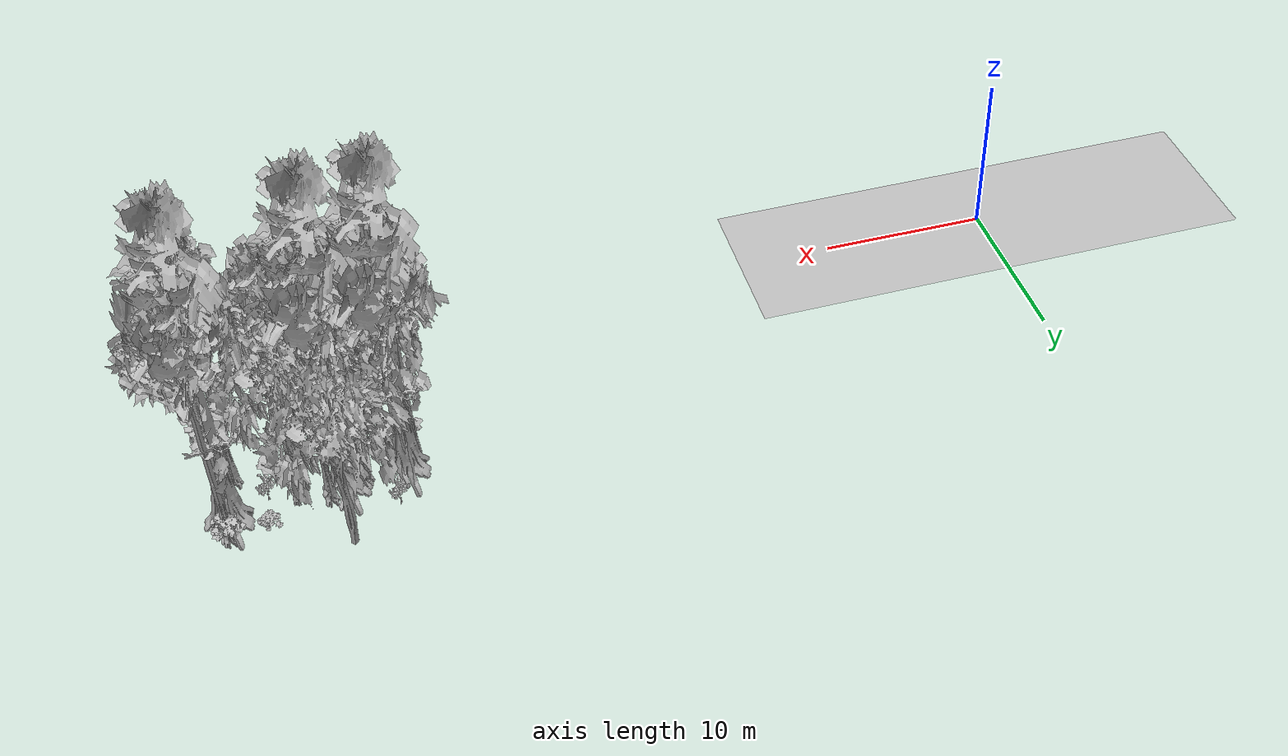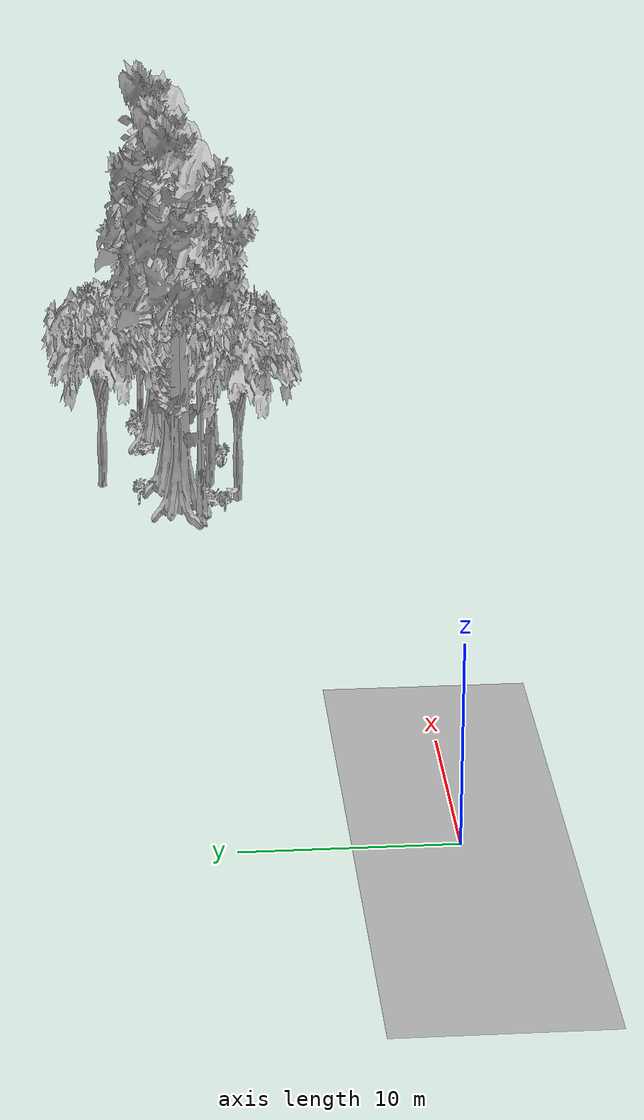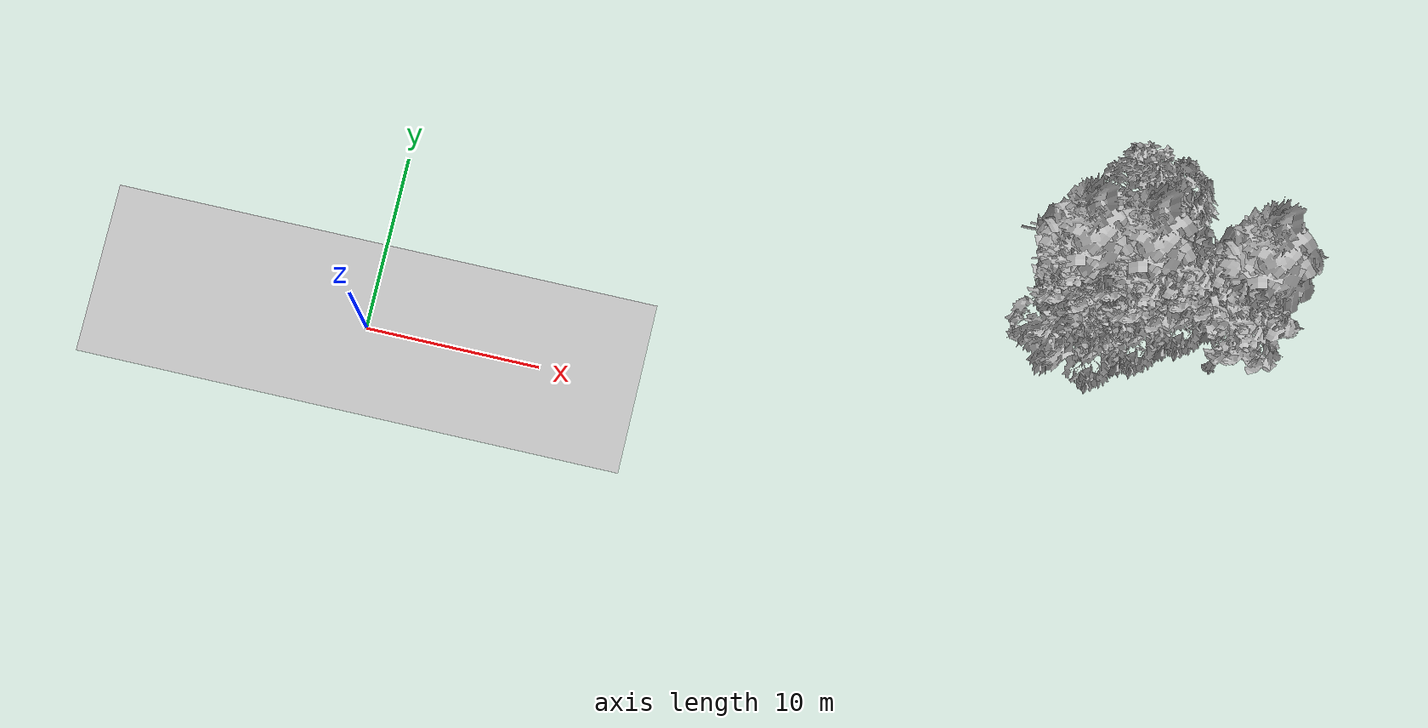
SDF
<sdf version="1.7">
 <world name="default">
  <model name="ground_plane">
   <static>1</static>
   <link name="link">
    <collision name="collision">
     <geometry><plane><normal>0 0 1</normal><size>100 100</size></plane></geometry>
     <surface><contact><ode><min_depth>0.01</min_depth><max_vel>0</max_vel></ode></contact></surface>
    </collision>
    <visual name="grass">
     <cast_shadows>0</cast_shadows>
     <geometry>
      <mesh>
       <scale>0.5814285714285714 0.18142857142857144 0.1</scale>
       <uri>file://grass_plane/meshes/grass_plane.dae</uri>
      </mesh>
     </geometry>
    </visual>
   </link>
  </model>
  <model name="Tree 50">
   <static>1</static>
   <pose>41.97104125630116 11.249660640998368 0 1.57079 -0 0</pose>
   <link name="link">
    <collision name="collision">
     <geometry><mesh><scale>3.5 5 3.5</scale><uri>model://tree_9/meshes/tree_9.obj</uri></mesh></geometry>
    </collision>
    <visual name="visual">
     <geometry><mesh><scale>3.5 5 3.5</scale><uri>model://tree_9/meshes/tree_9.obj</uri></mesh></geometry>
    </visual>
   </link>
  </model>
  <model name="Tree 56">
   <static>1</static>
   <pose>37.170824861043954 9.642553487763923 0 1.57079 -0 0</pose>
   <link name="link">
    <collision name="collision">
     <geometry><mesh><scale>3.5 5 3.5</scale><uri>model://tree_9/meshes/tree_9.obj</uri></mesh></geometry>
    </collision>
    <visual name="visual">
     <geometry><mesh><scale>3.5 5 3.5</scale><uri>model://tree_9/meshes/tree_9.obj</uri></mesh></geometry>
    </visual>
   </link>
  </model>
  <model name="Tree 77">
   <static>1</static>
   <pose>40.910762335384874 11.094497418269047 0 1.57079 -0 0</pose>
   <link name="link">
    <collision name="collision">
     <geometry><mesh><scale>3.5 5 3.5</scale><uri>model://tree_4/meshes/tree_4.obj</uri></mesh></geometry>
    </collision>
    <visual name="visual">
     <geometry><mesh><scale>3.5 5 3.5</scale><uri>model://tree_4/meshes/tree_4.obj</uri></mesh></geometry>
    </visual>
   </link>
  </model>
  <model name="Tree 84">
   <static>1</static>
   <pose>41.08598160484877 14.856618844797872 0 1.57079 -0 0</pose>
   <link name="link">
    <collision name="collision">
     <geometry><mesh><scale>3.5 5 3.5</scale><uri>model://tree_2/meshes/tree_2.obj</uri></mesh></geometry>
    </collision>
    <visual name="visual">
     <geometry><mesh><scale>3.5 5 3.5</scale><uri>model://tree_2/meshes/tree_2.obj</uri></mesh></geometry>
    </visual>
   </link>
  </model>
  <model name="Tree 146">
   <static>1</static>
   <pose>47.379776969072765 12.543030335403976 0 1.57079 -0 0</pose>
   <link name="link">
    <collision name="collision">
     <geometry><mesh><scale>3.5 5 3.5</scale><uri>model://tree_9/meshes/tree_9.obj</uri></mesh></geometry>
    </collision>
    <visual name="visual">
     <geometry><mesh><scale>3.5 5 3.5</scale><uri>model://tree_9/meshes/tree_9.obj</uri></mesh></geometry>
    </visual>
   </link>
  </model>
  <model name="Tree 157">
   <static>1</static>
   <pose>43.097623117727906 10.472269454866012 0 1.57079 -0 0</pose>
   <link name="link">
    <collision name="collision">
     <geometry><mesh><scale>3.5 5 3.5</scale><uri>model://tree_2/meshes/tree_2.obj</uri></mesh></geometry>
    </collision>
    <visual name="visual">
     <geometry><mesh><scale>3.5 5 3.5</scale><uri>model://tree_2/meshes/tree_2.obj</uri></mesh></geometry>
    </visual>
   </link>
  </model>
  <model name="Tree 164">
   <static>1</static>
   <pose>40.859895760914384 8.967812747699071 0 1.57079 -0 0</pose>
   <link name="link">
    <collision name="collision">
     <geometry><mesh><scale>3.5 5 3.5</scale><uri>model://tree_2/meshes/tree_2.obj</uri></mesh></geometry>
    </collision>
    <visual name="visual">
     <geometry><mesh><scale>3.5 5 3.5</scale><uri>model://tree_2/meshes/tree_2.obj</uri></mesh></geometry>
    </visual>
   </link>
  </model>
  <model name="Tree 190">
   <static>1</static>
   <pose>37.695696379605764 10.73073435688731 0 1.57079 -0 0</pose>
   <link name="link">
    <collision name="collision">
     <geometry><mesh><scale>3.5 5 3.5</scale><uri>model://tree_4/meshes/tree_4.obj</uri></mesh></geometry>
    </collision>
    <visual name="visual">
     <geometry><mesh><scale>3.5 5 3.5</scale><uri>model://tree_4/meshes/tree_4.obj</uri></mesh></geometry>
    </visual>
   </link>
  </model>
  <model name="Tree 199">
   <static>1</static>
   <pose>41.19599163359551 9.468705632611996 0 1.57079 -0 0</pose>
   <link name="link">
    <collision name="collision">
     <geometry><mesh><scale>3.5 5 3.5</scale><uri>model://tree_9/meshes/tree_9.obj</uri></mesh></geometry>
    </collision>
    <visual name="visual">
     <geometry><mesh><scale>3.5 5 3.5</scale><uri>model://tree_9/meshes/tree_9.obj</uri></mesh></geometry>
    </visual>
   </link>
  </model>
  <model name="Tree 224">
   <static>1</static>
   <pose>38.66915618632302 7.592163840020792 0 1.57079 -0 0</pose>
   <link name="link">
    <collision name="collision">
     <geometry><mesh><scale>3.5 5 3.5</scale><uri>model://tree_2/meshes/tree_2.obj</uri></mesh></geometry>
    </collision>
    <visual name="visual">
     <geometry><mesh><scale>3.5 5 3.5</scale><uri>model://tree_2/meshes/tree_2.obj</uri></mesh></geometry>
    </visual>
   </link>
  </model>
  <model name="Tree 248">
   <static>1</static>
   <pose>47.107031576079336 11.644077007185853 0 1.57079 -0 0</pose>
   <link name="link">
    <collision name="collision">
     <geometry><mesh><scale>3.5 5 3.5</scale><uri>model://tree_4/meshes/tree_4.obj</uri></mesh></geometry>
    </collision>
    <visual name="visual">
     <geometry><mesh><scale>3.5 5 3.5</scale><uri>model://tree_4/meshes/tree_4.obj</uri></mesh></geometry>
    </visual>
   </link>
  </model>
  <model name="Tree 312">
   <static>1</static>
   <pose>46.836742634547974 8.494657540719537 0 1.57079 -0 0</pose>
   <link name="link">
    <collision name="collision">
     <geometry><mesh><scale>3.5 5 3.5</scale><uri>model://tree_9/meshes/tree_9.obj</uri></mesh></geometry>
    </collision>
    <visual name="visual">
     <geometry><mesh><scale>3.5 5 3.5</scale><uri>model://tree_9/meshes/tree_9.obj</uri></mesh></geometry>
    </visual>
   </link>
  </model>
  <model name="Tree 362">
   <static>1</static>
   <pose>43.61623794232408 10.630429956997666 0 1.57079 -0 0</pose>
   <link name="link">
    <collision name="collision">
     <geometry><mesh><scale>3.5 5 3.5</scale><uri>model://tree_9/meshes/tree_9.obj</uri></mesh></geometry>
    </collision>
    <visual name="visual">
     <geometry><mesh><scale>3.5 5 3.5</scale><uri>model://tree_9/meshes/tree_9.obj</uri></mesh></geometry>
    </visual>
   </link>
  </model>
  <model name="Tree 432">
   <static>1</static>
   <pose>40.0328661320206 10.415449319853902 0 1.57079 -0 0</pose>
   <link name="link">
    <collision name="collision">
     <geometry><mesh><scale>3.5 5 3.5</scale><uri>model://tree_9/meshes/tree_9.obj</uri></mesh></geometry>
    </collision>
    <visual name="visual">
     <geometry><mesh><scale>3.5 5 3.5</scale><uri>model://tree_9/meshes/tree_9.obj</uri></mesh></geometry>
    </visual>
   </link>
  </model>
  <model name="Bush 62">
   <static>1</static>
   <pose>38.50464901356726 12.969069080034885 0 1.57079 -0 0</pose>
   <link name="link">
    <collision name="collision">
     <geometry><mesh><scale>2 2 2</scale><uri>model://bush_5/meshes/bush_5.obj</uri></mesh></geometry>
     <surface><contact><collide_without_contact>false</collide_without_contact></contact></surface>
    </collision>
    <visual name="visual">
     <geometry><mesh><scale>2 2 2</scale><uri>model://bush_5/meshes/bush_5.obj</uri></mesh></geometry>
    </visual>
   </link>
  </model>
  <model name="Bush 220">
   <static>1</static>
   <pose>37.9664288573497 9.061001448016746 0 1.57079 -0 0</pose>
   <link name="link">
    <collision name="collision">
     <geometry><mesh><scale>2 2 2</scale><uri>model://bush_3/meshes/bush_3.obj</uri></mesh></geometry>
     <surface><contact><collide_without_contact>false</collide_without_contact></contact></surface>
    </collision>
    <visual name="visual">
     <geometry><mesh><scale>2 2 2</scale><uri>model://bush_3/meshes/bush_3.obj</uri></mesh></geometry>
    </visual>
   </link>
  </model>
  <model name="Bush 255">
   <static>1</static>
   <pose>47.40111204102462 12.44411384695141 0 1.57079 -0 0</pose>
   <link name="link">
    <collision name="collision">
     <geometry><mesh><scale>2 2 2</scale><uri>model://bush_1/meshes/bush_1.obj</uri></mesh></geometry>
     <surface><contact><collide_without_contact>false</collide_without_contact></contact></surface>
    </collision>
    <visual name="visual">
     <geometry><mesh><scale>2 2 2</scale><uri>model://bush_1/meshes/bush_1.obj</uri></mesh></geometry>
    </visual>
   </link>
  </model>
  <model name="Bush 268">
   <static>1</static>
   <pose>43.31278776137931 8.266004585434278 0 1.57079 -0 0</pose>
   <link name="link">
    <collision name="collision">
     <geometry><mesh><scale>2 2 2</scale><uri>model://bush_4/meshes/bush_4.obj</uri></mesh></geometry>
     <surface><contact><collide_without_contact>false</collide_without_contact></contact></surface>
    </collision>
    <visual name="visual">
     <geometry><mesh><scale>2 2 2</scale><uri>model://bush_4/meshes/bush_4.obj</uri></mesh></geometry>
    </visual>
   </link>
  </model>
  <model name="Bush 283">
   <static>1</static>
   <pose>45.170023092996914 10.62878981651006 0 1.57079 -0 0</pose>
   <link name="link">
    <collision name="collision">
     <geometry><mesh><scale>2 2 2</scale><uri>model://bush_5/meshes/bush_5.obj</uri></mesh></geometry>
     <surface><contact><collide_without_contact>false</collide_without_contact></contact></surface>
    </collision>
    <visual name="visual">
     <geometry><mesh><scale>2 2 2</scale><uri>model://bush_5/meshes/bush_5.obj</uri></mesh></geometry>
    </visual>
   </link>
  </model>
  <model name="Bush 292">
   <static>1</static>
   <pose>37.32334503013303 8.384074385563267 0 1.57079 -0 0</pose>
   <link name="link">
    <collision name="collision">
     <geometry><mesh><scale>2 2 2</scale><uri>model://bush_0/meshes/bush_0.obj</uri></mesh></geometry>
     <surface><contact><collide_without_contact>false</collide_without_contact></contact></surface>
    </collision>
    <visual name="visual">
     <geometry><mesh><scale>2 2 2</scale><uri>model://bush_0/meshes/bush_0.obj</uri></mesh></geometry>
    </visual>
   </link>
  </model>
  <model name="Bush 303">
   <static>1</static>
   <pose>40.29083629650155 9.448049397121657 0 1.57079 -0 0</pose>
   <link name="link">
    <collision name="collision">
     <geometry><mesh><scale>2 2 2</scale><uri>model://bush_2/meshes/bush_2.obj</uri></mesh></geometry>
     <surface><contact><collide_without_contact>false</collide_without_contact></contact></surface>
    </collision>
    <visual name="visual">
     <geometry><mesh><scale>2 2 2</scale><uri>model://bush_2/meshes/bush_2.obj</uri></mesh></geometry>
    </visual>
   </link>
  </model>
  <model name="Bush 331">
   <static>1</static>
   <pose>45.31647849398735 12.510297899574738 0 1.57079 -0 0</pose>
   <link name="link">
    <collision name="collision">
     <geometry><mesh><scale>2 2 2</scale><uri>model://bush_3/meshes/bush_3.obj</uri></mesh></geometry>
     <surface><contact><collide_without_contact>false</collide_without_contact></contact></surface>
    </collision>
    <visual name="visual">
     <geometry><mesh><scale>2 2 2</scale><uri>model://bush_3/meshes/bush_3.obj</uri></mesh></geometry>
    </visual>
   </link>
  </model>
 </world>
</sdf>
